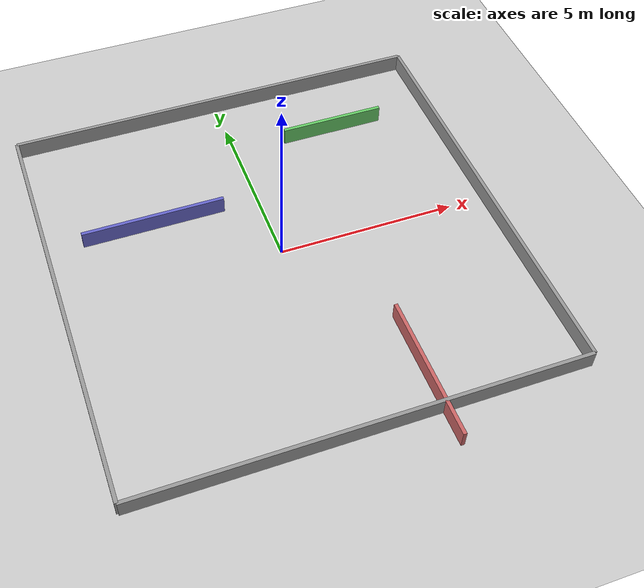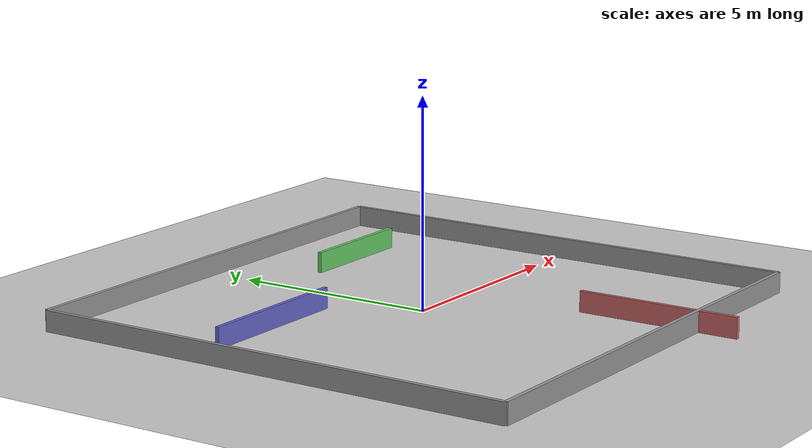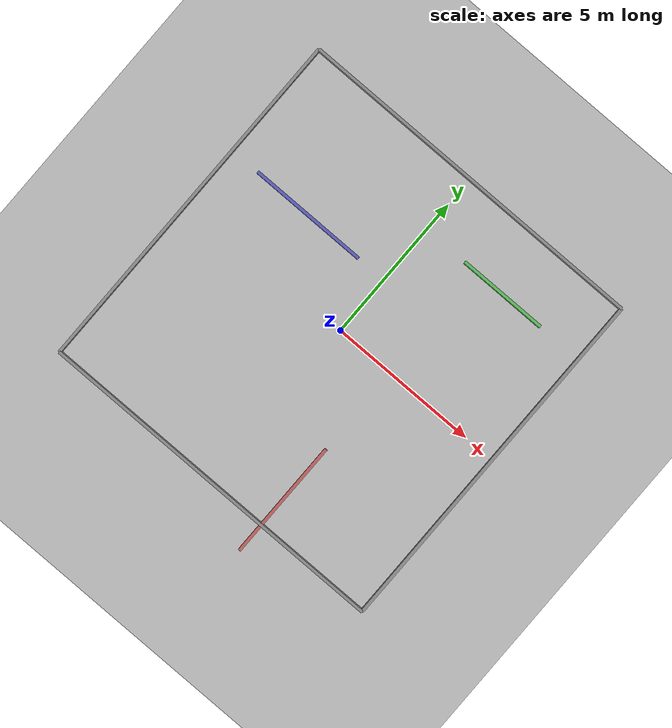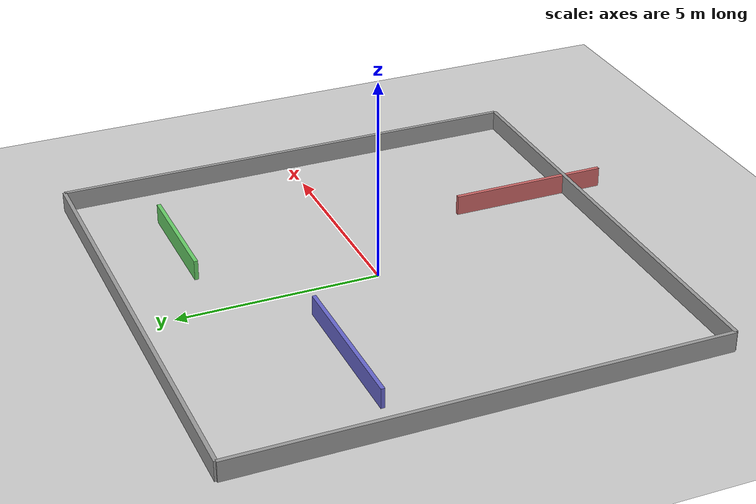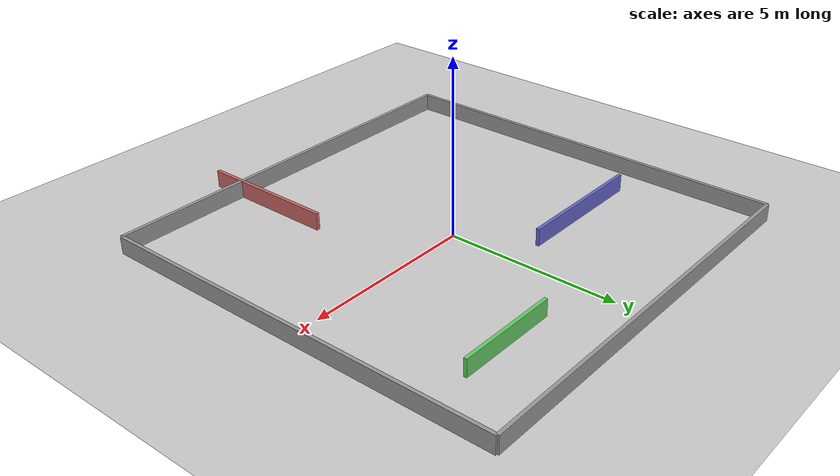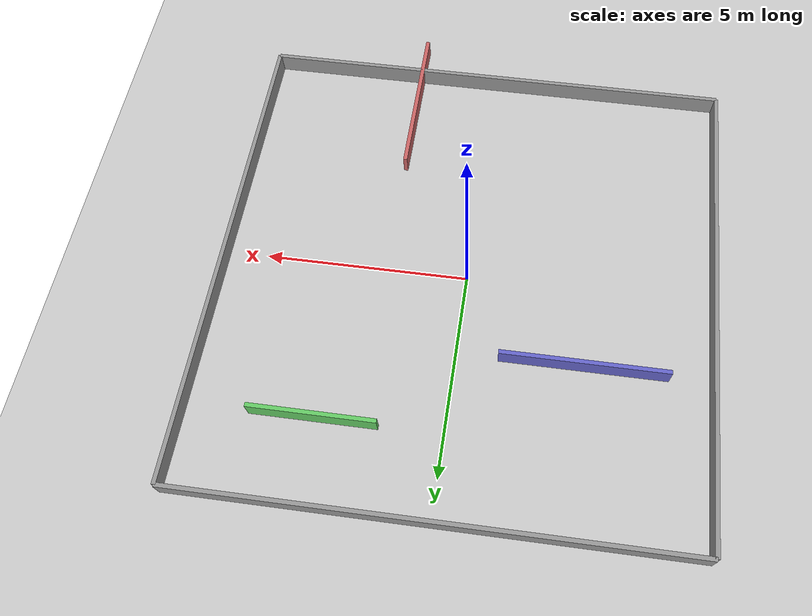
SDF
<?xml version="1.0" ?>
<sdf version="1.6">
  <world name="small_maze_world">
    <!-- Gravity -->
    <gravity>0 0 -9.8</gravity>

    <!-- Ground -->
    <include>
      <uri>model://ground_plane</uri>
    </include>

    <!-- Sun -->
    <include>
      <uri>model://sun</uri>
    </include>

    <!-- Physics -->
    <physics type="ode">
      <real_time_update_rate>1000</real_time_update_rate>
      <max_step_size>0.001</max_step_size>
    </physics>

    <!-- Outer walls (3x3 grid, cell size 4x4 m) -->
    <model name="wall_north">
      <static>true</static>
      <pose>0 6 0.25 0 0 0</pose>
      <link name="link">
        <collision name="collision">
          <geometry><box><size>12 0.1 0.5</size></box></geometry>
        </collision>
        <visual name="visual">
          <geometry><box><size>12 0.1 0.5</size></box></geometry>
          <material><ambient>0.6 0.6 0.6 1</ambient></material>
        </visual>
      </link>
    </model>

    <model name="wall_south">
      <static>true</static>
      <pose>0 -6 0.25 0 0 0</pose>
      <link name="link">
        <collision name="collision">
          <geometry><box><size>12 0.1 0.5</size></box></geometry>
        </collision>
        <visual name="visual">
          <geometry><box><size>12 0.1 0.5</size></box></geometry>
          <material><ambient>0.6 0.6 0.6 1</ambient></material>
        </visual>
      </link>
    </model>

    <model name="wall_east">
      <static>true</static>
      <pose>6 0 0.25 0 0 0</pose>
      <link name="link">
        <collision name="collision">
          <geometry><box><size>0.1 12 0.5</size></box></geometry>
        </collision>
        <visual name="visual">
          <geometry><box><size>0.1 12 0.5</size></box></geometry>
          <material><ambient>0.6 0.6 0.6 1</ambient></material>
        </visual>
      </link>
    </model>

    <model name="wall_west">
      <static>true</static>
      <pose>-6 0 0.25 0 0 0</pose>
      <link name="link">
        <collision name="collision">
          <geometry><box><size>0.1 12 0.5</size></box></geometry>
        </collision>
        <visual name="visual">
          <geometry><box><size>0.1 12 0.5</size></box></geometry>
          <material><ambient>0.6 0.6 0.6 1</ambient></material>
        </visual>
      </link>
    </model>

    <!-- Interior walls (shifted to avoid 0,0,0) -->
    <model name="maze_wall_1">
      <static>true</static>
      <pose>-3 2 0.25 0 0 0</pose>
      <link name="link">
        <collision name="collision">
          <geometry><box><size>4 0.1 0.5</size></box></geometry>
        </collision>
        <visual name="visual">
          <geometry><box><size>4 0.1 0.5</size></box></geometry>
          <material><ambient>0.4 0.4 0.8 1</ambient></material>
        </visual>
      </link>
    </model>

    <model name="maze_wall_2">
      <static>true</static>
      <pose>2 -5 0.25 0 0 1.5708</pose>
      <link name="link">
        <collision name="collision">
          <geometry><box><size>4 0.1 0.5</size></box></geometry>
        </collision>
        <visual name="visual">
          <geometry><box><size>4 0.1 0.5</size></box></geometry>
          <material><ambient>0.8 0.4 0.4 1</ambient></material>
        </visual>
      </link>
    </model>

    <model name="maze_wall_3">
      <static>true</static>
      <pose>3 4 0.25 0 0 0</pose>
      <link name="link">
        <collision name="collision">
          <geometry><box><size>3 0.1 0.5</size></box></geometry>
        </collision>
        <visual name="visual">
          <geometry><box><size>3 0.1 0.5</size></box></geometry>
          <material><ambient>0.4 0.8 0.4 1</ambient></material>
        </visual>
      </link>
    </model>

  </world>
</sdf>
